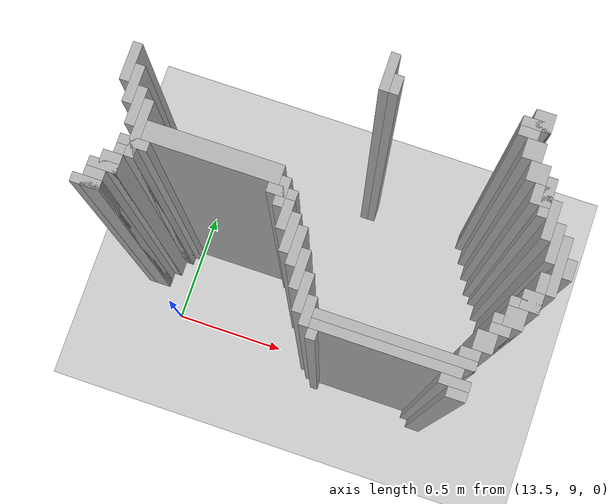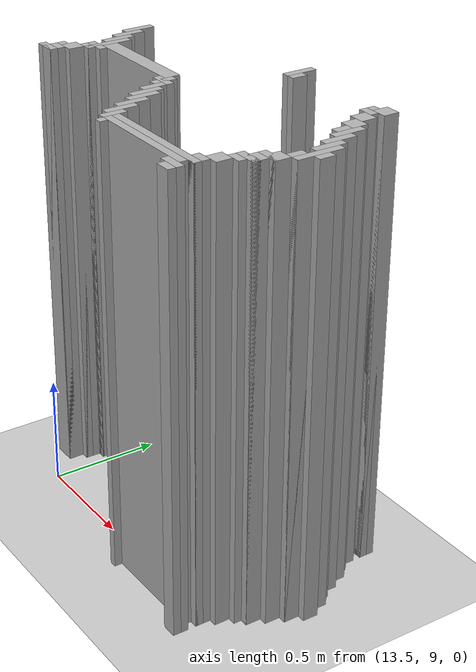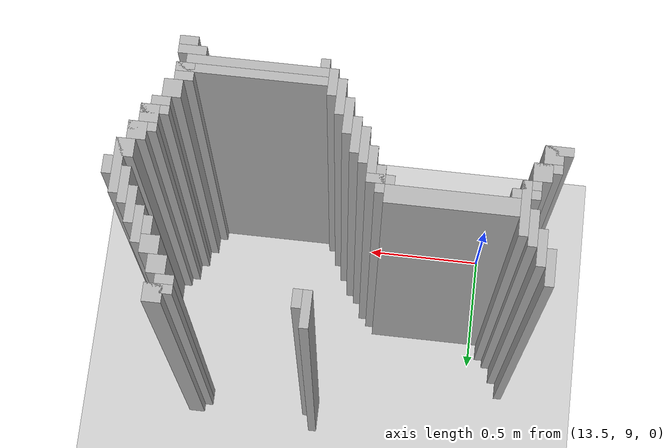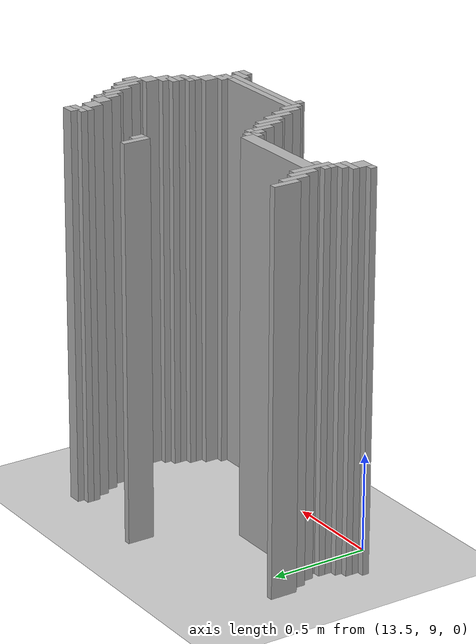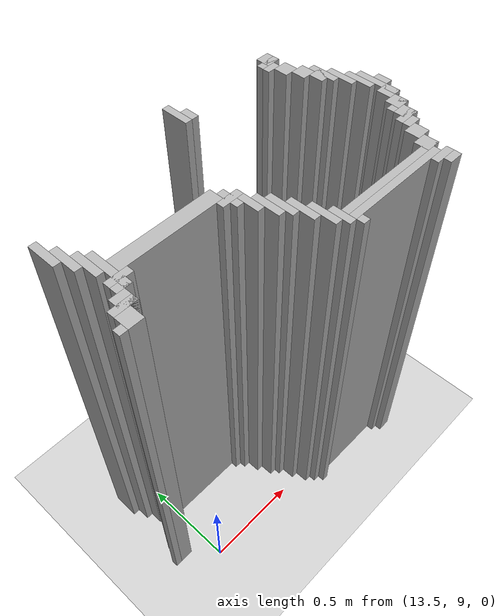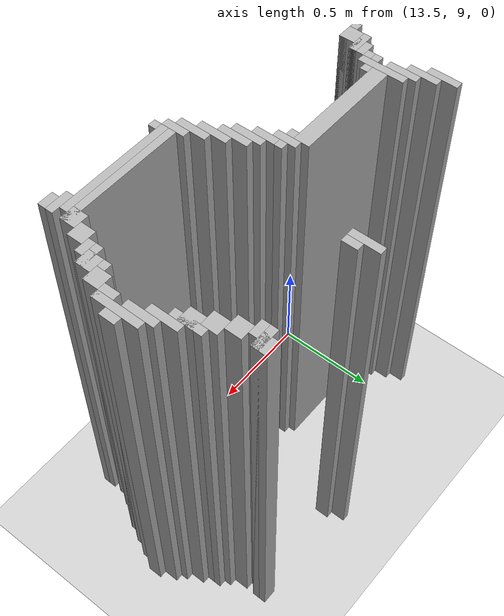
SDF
<sdf version="1.6">
 <world name="slam_world">
  <model name="ground_plane">
   <static>true</static>
   <link name="link">
    <collision name="collision">
     <geometry><plane><normal>0 0 1</normal><size>100 100</size></plane></geometry>
    </collision>
    <visual name="visual">
     <geometry><plane><normal>0 0 1</normal><size>100 100</size></plane></geometry>
     <material>
      <ambient>0.8 0.8 0.8 1</ambient>
      <diffuse>0.8 0.8 0.8 1</diffuse>
      <specular>0.8 0.8 0.8 1</specular>
     </material>
    </visual>
   </link>
  </model>
  <model name="wall_2509">
   <static>true</static>
   <pose>14.18213457076566 9.814385150812065 1.0 0 0 0</pose>
   <link name="link">
    <collision name="collision">
     <geometry><box><size>0.03480278422273782 0.13921113689095127 2.0</size></box></geometry>
    </collision>
    <visual name="visual">
     <geometry><box><size>0.03480278422273782 0.13921113689095127 2.0</size></box></geometry>
     <material><ambient>0.5 0.5 0.5 1</ambient><diffuse>0.7 0.7 0.7 1</diffuse></material>
    </visual>
   </link>
  </model>
  <model name="wall_2518">
   <static>true</static>
   <pose>14.721577726218097 9.814385150812065 1.0 0 0 0</pose>
   <link name="link">
    <collision name="collision">
     <geometry><box><size>0.06960556844547564 0.06960556844547564 2.0</size></box></geometry>
    </collision>
    <visual name="visual">
     <geometry><box><size>0.06960556844547564 0.06960556844547564 2.0</size></box></geometry>
     <material><ambient>0.5 0.5 0.5 1</ambient><diffuse>0.7 0.7 0.7 1</diffuse></material>
    </visual>
   </link>
  </model>
  <model name="wall_2531">
   <static>true</static>
   <pose>14.2169373549884 9.779582366589327 1.0 0 0 0</pose>
   <link name="link">
    <collision name="collision">
     <geometry><box><size>0.03480278422273782 0.06960556844547564 2.0</size></box></geometry>
    </collision>
    <visual name="visual">
     <geometry><box><size>0.03480278422273782 0.06960556844547564 2.0</size></box></geometry>
     <material><ambient>0.5 0.5 0.5 1</ambient><diffuse>0.7 0.7 0.7 1</diffuse></material>
    </visual>
   </link>
  </model>
  <model name="wall_2532">
   <static>true</static>
   <pose>14.704176334106728 9.796983758700696 1.0 0 0 0</pose>
   <link name="link">
    <collision name="collision">
     <geometry><box><size>0.10440835266821345 0.03480278422273782 2.0</size></box></geometry>
    </collision>
    <visual name="visual">
     <geometry><box><size>0.10440835266821345 0.03480278422273782 2.0</size></box></geometry>
     <material><ambient>0.5 0.5 0.5 1</ambient><diffuse>0.7 0.7 0.7 1</diffuse></material>
    </visual>
   </link>
  </model>
  <model name="wall_2540">
   <static>true</static>
   <pose>14.68677494199536 9.762180974477959 1.0 0 0 0</pose>
   <link name="link">
    <collision name="collision">
     <geometry><box><size>0.06960556844547564 0.03480278422273782 2.0</size></box></geometry>
    </collision>
    <visual name="visual">
     <geometry><box><size>0.06960556844547564 0.03480278422273782 2.0</size></box></geometry>
     <material><ambient>0.5 0.5 0.5 1</ambient><diffuse>0.7 0.7 0.7 1</diffuse></material>
    </visual>
   </link>
  </model>
  <model name="wall_2551">
   <static>true</static>
   <pose>14.721577726218097 9.70997679814385 1.0 0 0 0</pose>
   <link name="link">
    <collision name="collision">
     <geometry><box><size>0.06960556844547564 0.06960556844547564 2.0</size></box></geometry>
    </collision>
    <visual name="visual">
     <geometry><box><size>0.06960556844547564 0.06960556844547564 2.0</size></box></geometry>
     <material><ambient>0.5 0.5 0.5 1</ambient><diffuse>0.7 0.7 0.7 1</diffuse></material>
    </visual>
   </link>
  </model>
  <model name="wall_2568">
   <static>true</static>
   <pose>14.756380510440835 9.640371229698376 1.0 0 0 0</pose>
   <link name="link">
    <collision name="collision">
     <geometry><box><size>0.06960556844547564 0.06960556844547564 2.0</size></box></geometry>
    </collision>
    <visual name="visual">
     <geometry><box><size>0.06960556844547564 0.06960556844547564 2.0</size></box></geometry>
     <material><ambient>0.5 0.5 0.5 1</ambient><diffuse>0.7 0.7 0.7 1</diffuse></material>
    </visual>
   </link>
  </model>
  <model name="wall_2578">
   <static>true</static>
   <pose>13.346867749419953 9.5707656612529 1.0 0 0 0</pose>
   <link name="link">
    <collision name="collision">
     <geometry><box><size>0.03480278422273782 0.13921113689095127 2.0</size></box></geometry>
    </collision>
    <visual name="visual">
     <geometry><box><size>0.03480278422273782 0.13921113689095127 2.0</size></box></geometry>
     <material><ambient>0.5 0.5 0.5 1</ambient><diffuse>0.7 0.7 0.7 1</diffuse></material>
    </visual>
   </link>
  </model>
  <model name="wall_2579">
   <static>true</static>
   <pose>14.80858468677494 9.5707656612529 1.0 0 0 0</pose>
   <link name="link">
    <collision name="collision">
     <geometry><box><size>0.03480278422273782 0.13921113689095127 2.0</size></box></geometry>
    </collision>
    <visual name="visual">
     <geometry><box><size>0.03480278422273782 0.13921113689095127 2.0</size></box></geometry>
     <material><ambient>0.5 0.5 0.5 1</ambient><diffuse>0.7 0.7 0.7 1</diffuse></material>
    </visual>
   </link>
  </model>
  <model name="wall_2590">
   <static>true</static>
   <pose>14.791183294663572 9.5707656612529 1.0 0 0 0</pose>
   <link name="link">
    <collision name="collision">
     <geometry><box><size>0.06960556844547564 0.06960556844547564 2.0</size></box></geometry>
    </collision>
    <visual name="visual">
     <geometry><box><size>0.06960556844547564 0.06960556844547564 2.0</size></box></geometry>
     <material><ambient>0.5 0.5 0.5 1</ambient><diffuse>0.7 0.7 0.7 1</diffuse></material>
    </visual>
   </link>
  </model>
  <model name="wall_2600">
   <static>true</static>
   <pose>13.38167053364269 9.501160092807424 1.0 0 0 0</pose>
   <link name="link">
    <collision name="collision">
     <geometry><box><size>0.03480278422273782 0.13921113689095127 2.0</size></box></geometry>
    </collision>
    <visual name="visual">
     <geometry><box><size>0.03480278422273782 0.13921113689095127 2.0</size></box></geometry>
     <material><ambient>0.5 0.5 0.5 1</ambient><diffuse>0.7 0.7 0.7 1</diffuse></material>
    </visual>
   </link>
  </model>
  <model name="wall_2601">
   <static>true</static>
   <pose>14.84338747099768 9.501160092807424 1.0 0 0 0</pose>
   <link name="link">
    <collision name="collision">
     <geometry><box><size>0.03480278422273782 0.13921113689095127 2.0</size></box></geometry>
    </collision>
    <visual name="visual">
     <geometry><box><size>0.03480278422273782 0.13921113689095127 2.0</size></box></geometry>
     <material><ambient>0.5 0.5 0.5 1</ambient><diffuse>0.7 0.7 0.7 1</diffuse></material>
    </visual>
   </link>
  </model>
  <model name="wall_2615">
   <static>true</static>
   <pose>13.416473317865428 9.431554524361948 1.0 0 0 0</pose>
   <link name="link">
    <collision name="collision">
     <geometry><box><size>0.03480278422273782 0.13921113689095127 2.0</size></box></geometry>
    </collision>
    <visual name="visual">
     <geometry><box><size>0.03480278422273782 0.13921113689095127 2.0</size></box></geometry>
     <material><ambient>0.5 0.5 0.5 1</ambient><diffuse>0.7 0.7 0.7 1</diffuse></material>
    </visual>
   </link>
  </model>
  <model name="wall_2616">
   <static>true</static>
   <pose>14.878190255220417 9.431554524361948 1.0 0 0 0</pose>
   <link name="link">
    <collision name="collision">
     <geometry><box><size>0.03480278422273782 0.13921113689095127 2.0</size></box></geometry>
    </collision>
    <visual name="visual">
     <geometry><box><size>0.03480278422273782 0.13921113689095127 2.0</size></box></geometry>
     <material><ambient>0.5 0.5 0.5 1</ambient><diffuse>0.7 0.7 0.7 1</diffuse></material>
    </visual>
   </link>
  </model>
  <model name="wall_2626">
   <static>true</static>
   <pose>13.451276102088167 9.361948955916473 1.0 0 0 0</pose>
   <link name="link">
    <collision name="collision">
     <geometry><box><size>0.03480278422273782 0.2088167053364269 2.0</size></box></geometry>
    </collision>
    <visual name="visual">
     <geometry><box><size>0.03480278422273782 0.2088167053364269 2.0</size></box></geometry>
     <material><ambient>0.5 0.5 0.5 1</ambient><diffuse>0.7 0.7 0.7 1</diffuse></material>
    </visual>
   </link>
  </model>
  <model name="wall_2627">
   <static>true</static>
   <pose>14.912993039443155 9.361948955916473 1.0 0 0 0</pose>
   <link name="link">
    <collision name="collision">
     <geometry><box><size>0.03480278422273782 0.2088167053364269 2.0</size></box></geometry>
    </collision>
    <visual name="visual">
     <geometry><box><size>0.03480278422273782 0.2088167053364269 2.0</size></box></geometry>
     <material><ambient>0.5 0.5 0.5 1</ambient><diffuse>0.7 0.7 0.7 1</diffuse></material>
    </visual>
   </link>
  </model>
  <model name="wall_2641">
   <static>true</static>
   <pose>13.7122969837587 9.361948955916473 1.0 0 0 0</pose>
   <link name="link">
    <collision name="collision">
     <geometry><box><size>0.4872389791183295 0.06960556844547564 2.0</size></box></geometry>
    </collision>
    <visual name="visual">
     <geometry><box><size>0.4872389791183295 0.06960556844547564 2.0</size></box></geometry>
     <material><ambient>0.5 0.5 0.5 1</ambient><diffuse>0.7 0.7 0.7 1</diffuse></material>
    </visual>
   </link>
  </model>
  <model name="wall_2642">
   <static>true</static>
   <pose>14.947795823665892 9.361948955916473 1.0 0 0 0</pose>
   <link name="link">
    <collision name="collision">
     <geometry><box><size>0.03480278422273782 0.06960556844547564 2.0</size></box></geometry>
    </collision>
    <visual name="visual">
     <geometry><box><size>0.03480278422273782 0.06960556844547564 2.0</size></box></geometry>
     <material><ambient>0.5 0.5 0.5 1</ambient><diffuse>0.7 0.7 0.7 1</diffuse></material>
    </visual>
   </link>
  </model>
  <model name="wall_2652">
   <static>true</static>
   <pose>13.973317865429234 9.309744779582367 1.0 0 0 0</pose>
   <link name="link">
    <collision name="collision">
     <geometry><box><size>0.03480278422273782 0.10440835266821345 2.0</size></box></geometry>
    </collision>
    <visual name="visual">
     <geometry><box><size>0.03480278422273782 0.10440835266821345 2.0</size></box></geometry>
     <material><ambient>0.5 0.5 0.5 1</ambient><diffuse>0.7 0.7 0.7 1</diffuse></material>
    </visual>
   </link>
  </model>
  <model name="wall_2669">
   <static>true</static>
   <pose>13.451276102088167 9.309744779582367 1.0 0 0 0</pose>
   <link name="link">
    <collision name="collision">
     <geometry><box><size>0.10440835266821345 0.03480278422273782 2.0</size></box></geometry>
    </collision>
    <visual name="visual">
     <geometry><box><size>0.10440835266821345 0.03480278422273782 2.0</size></box></geometry>
     <material><ambient>0.5 0.5 0.5 1</ambient><diffuse>0.7 0.7 0.7 1</diffuse></material>
    </visual>
   </link>
  </model>
  <model name="wall_2670">
   <static>true</static>
   <pose>13.973317865429234 9.309744779582367 1.0 0 0 0</pose>
   <link name="link">
    <collision name="collision">
     <geometry><box><size>0.10440835266821345 0.03480278422273782 2.0</size></box></geometry>
    </collision>
    <visual name="visual">
     <geometry><box><size>0.10440835266821345 0.03480278422273782 2.0</size></box></geometry>
     <material><ambient>0.5 0.5 0.5 1</ambient><diffuse>0.7 0.7 0.7 1</diffuse></material>
    </visual>
   </link>
  </model>
  <model name="wall_2671">
   <static>true</static>
   <pose>14.895591647331786 9.292343387470996 1.0 0 0 0</pose>
   <link name="link">
    <collision name="collision">
     <geometry><box><size>0.06960556844547564 0.06960556844547564 2.0</size></box></geometry>
    </collision>
    <visual name="visual">
     <geometry><box><size>0.06960556844547564 0.06960556844547564 2.0</size></box></geometry>
     <material><ambient>0.5 0.5 0.5 1</ambient><diffuse>0.7 0.7 0.7 1</diffuse></material>
    </visual>
   </link>
  </model>
  <model name="wall_2688">
   <static>true</static>
   <pose>13.433874709976797 9.274941995359628 1.0 0 0 0</pose>
   <link name="link">
    <collision name="collision">
     <geometry><box><size>0.06960556844547564 0.03480278422273782 2.0</size></box></geometry>
    </collision>
    <visual name="visual">
     <geometry><box><size>0.06960556844547564 0.03480278422273782 2.0</size></box></geometry>
     <material><ambient>0.5 0.5 0.5 1</ambient><diffuse>0.7 0.7 0.7 1</diffuse></material>
    </visual>
   </link>
  </model>
  <model name="wall_2689">
   <static>true</static>
   <pose>14.008120649651971 9.24013921113689 1.0 0 0 0</pose>
   <link name="link">
    <collision name="collision">
     <geometry><box><size>0.03480278422273782 0.10440835266821345 2.0</size></box></geometry>
    </collision>
    <visual name="visual">
     <geometry><box><size>0.03480278422273782 0.10440835266821345 2.0</size></box></geometry>
     <material><ambient>0.5 0.5 0.5 1</ambient><diffuse>0.7 0.7 0.7 1</diffuse></material>
    </visual>
   </link>
  </model>
  <model name="wall_2706">
   <static>true</static>
   <pose>13.39907192575406 9.222737819025522 1.0 0 0 0</pose>
   <link name="link">
    <collision name="collision">
     <geometry><box><size>0.06960556844547564 0.06960556844547564 2.0</size></box></geometry>
    </collision>
    <visual name="visual">
     <geometry><box><size>0.06960556844547564 0.06960556844547564 2.0</size></box></geometry>
     <material><ambient>0.5 0.5 0.5 1</ambient><diffuse>0.7 0.7 0.7 1</diffuse></material>
    </visual>
   </link>
  </model>
  <model name="wall_2707">
   <static>true</static>
   <pose>14.042923433874709 9.187935034802784 1.0 0 0 0</pose>
   <link name="link">
    <collision name="collision">
     <geometry><box><size>0.03480278422273782 0.13921113689095127 2.0</size></box></geometry>
    </collision>
    <visual name="visual">
     <geometry><box><size>0.03480278422273782 0.13921113689095127 2.0</size></box></geometry>
     <material><ambient>0.5 0.5 0.5 1</ambient><diffuse>0.7 0.7 0.7 1</diffuse></material>
    </visual>
   </link>
  </model>
  <model name="wall_2708">
   <static>true</static>
   <pose>14.860788863109049 9.222737819025522 1.0 0 0 0</pose>
   <link name="link">
    <collision name="collision">
     <geometry><box><size>0.06960556844547564 0.06960556844547564 2.0</size></box></geometry>
    </collision>
    <visual name="visual">
     <geometry><box><size>0.06960556844547564 0.06960556844547564 2.0</size></box></geometry>
     <material><ambient>0.5 0.5 0.5 1</ambient><diffuse>0.7 0.7 0.7 1</diffuse></material>
    </visual>
   </link>
  </model>
  <model name="wall_2725">
   <static>true</static>
   <pose>13.38167053364269 9.205336426914153 1.0 0 0 0</pose>
   <link name="link">
    <collision name="collision">
     <geometry><box><size>0.10440835266821345 0.03480278422273782 2.0</size></box></geometry>
    </collision>
    <visual name="visual">
     <geometry><box><size>0.10440835266821345 0.03480278422273782 2.0</size></box></geometry>
     <material><ambient>0.5 0.5 0.5 1</ambient><diffuse>0.7 0.7 0.7 1</diffuse></material>
    </visual>
   </link>
  </model>
  <model name="wall_2726">
   <static>true</static>
   <pose>14.077726218097448 9.153132250580047 1.0 0 0 0</pose>
   <link name="link">
    <collision name="collision">
     <geometry><box><size>0.03480278422273782 0.13921113689095127 2.0</size></box></geometry>
    </collision>
    <visual name="visual">
     <geometry><box><size>0.03480278422273782 0.13921113689095127 2.0</size></box></geometry>
     <material><ambient>0.5 0.5 0.5 1</ambient><diffuse>0.7 0.7 0.7 1</diffuse></material>
    </visual>
   </link>
  </model>
  <model name="wall_2727">
   <static>true</static>
   <pose>14.84338747099768 9.205336426914153 1.0 0 0 0</pose>
   <link name="link">
    <collision name="collision">
     <geometry><box><size>0.10440835266821345 0.03480278422273782 2.0</size></box></geometry>
    </collision>
    <visual name="visual">
     <geometry><box><size>0.10440835266821345 0.03480278422273782 2.0</size></box></geometry>
     <material><ambient>0.5 0.5 0.5 1</ambient><diffuse>0.7 0.7 0.7 1</diffuse></material>
    </visual>
   </link>
  </model>
  <model name="wall_2741">
   <static>true</static>
   <pose>13.364269141531322 9.153132250580047 1.0 0 0 0</pose>
   <link name="link">
    <collision name="collision">
     <geometry><box><size>0.06960556844547564 0.06960556844547564 2.0</size></box></geometry>
    </collision>
    <visual name="visual">
     <geometry><box><size>0.06960556844547564 0.06960556844547564 2.0</size></box></geometry>
     <material><ambient>0.5 0.5 0.5 1</ambient><diffuse>0.7 0.7 0.7 1</diffuse></material>
    </visual>
   </link>
  </model>
  <model name="wall_2742">
   <static>true</static>
   <pose>14.825986078886311 9.153132250580047 1.0 0 0 0</pose>
   <link name="link">
    <collision name="collision">
     <geometry><box><size>0.06960556844547564 0.06960556844547564 2.0</size></box></geometry>
    </collision>
    <visual name="visual">
     <geometry><box><size>0.06960556844547564 0.06960556844547564 2.0</size></box></geometry>
     <material><ambient>0.5 0.5 0.5 1</ambient><diffuse>0.7 0.7 0.7 1</diffuse></material>
    </visual>
   </link>
  </model>
  <model name="wall_2759">
   <static>true</static>
   <pose>13.346867749419953 9.135730858468676 1.0 0 0 0</pose>
   <link name="link">
    <collision name="collision">
     <geometry><box><size>0.10440835266821345 0.03480278422273782 2.0</size></box></geometry>
    </collision>
    <visual name="visual">
     <geometry><box><size>0.10440835266821345 0.03480278422273782 2.0</size></box></geometry>
     <material><ambient>0.5 0.5 0.5 1</ambient><diffuse>0.7 0.7 0.7 1</diffuse></material>
    </visual>
   </link>
  </model>
  <model name="wall_2760">
   <static>true</static>
   <pose>14.112529002320185 9.08352668213457 1.0 0 0 0</pose>
   <link name="link">
    <collision name="collision">
     <geometry><box><size>0.03480278422273782 0.13921113689095127 2.0</size></box></geometry>
    </collision>
    <visual name="visual">
     <geometry><box><size>0.03480278422273782 0.13921113689095127 2.0</size></box></geometry>
     <material><ambient>0.5 0.5 0.5 1</ambient><diffuse>0.7 0.7 0.7 1</diffuse></material>
    </visual>
   </link>
  </model>
  <model name="wall_2761">
   <static>true</static>
   <pose>14.80858468677494 9.135730858468676 1.0 0 0 0</pose>
   <link name="link">
    <collision name="collision">
     <geometry><box><size>0.10440835266821345 0.03480278422273782 2.0</size></box></geometry>
    </collision>
    <visual name="visual">
     <geometry><box><size>0.10440835266821345 0.03480278422273782 2.0</size></box></geometry>
     <material><ambient>0.5 0.5 0.5 1</ambient><diffuse>0.7 0.7 0.7 1</diffuse></material>
    </visual>
   </link>
  </model>
  <model name="wall_2771">
   <static>true</static>
   <pose>14.791183294663572 9.100928074245939 1.0 0 0 0</pose>
   <link name="link">
    <collision name="collision">
     <geometry><box><size>0.06960556844547564 0.03480278422273782 2.0</size></box></geometry>
    </collision>
    <visual name="visual">
     <geometry><box><size>0.06960556844547564 0.03480278422273782 2.0</size></box></geometry>
     <material><ambient>0.5 0.5 0.5 1</ambient><diffuse>0.7 0.7 0.7 1</diffuse></material>
    </visual>
   </link>
  </model>
  <model name="wall_2789">
   <static>true</static>
   <pose>14.147331786542923 9.013921113689095 1.0 0 0 0</pose>
   <link name="link">
    <collision name="collision">
     <geometry><box><size>0.03480278422273782 0.13921113689095127 2.0</size></box></geometry>
    </collision>
    <visual name="visual">
     <geometry><box><size>0.03480278422273782 0.13921113689095127 2.0</size></box></geometry>
     <material><ambient>0.5 0.5 0.5 1</ambient><diffuse>0.7 0.7 0.7 1</diffuse></material>
    </visual>
   </link>
  </model>
  <model name="wall_2790">
   <static>true</static>
   <pose>14.756380510440835 9.048723897911833 1.0 0 0 0</pose>
   <link name="link">
    <collision name="collision">
     <geometry><box><size>0.06960556844547564 0.06960556844547564 2.0</size></box></geometry>
    </collision>
    <visual name="visual">
     <geometry><box><size>0.06960556844547564 0.06960556844547564 2.0</size></box></geometry>
     <material><ambient>0.5 0.5 0.5 1</ambient><diffuse>0.7 0.7 0.7 1</diffuse></material>
    </visual>
   </link>
  </model>
  <model name="wall_2808">
   <static>true</static>
   <pose>14.18213457076566 8.961716937354987 1.0 0 0 0</pose>
   <link name="link">
    <collision name="collision">
     <geometry><box><size>0.03480278422273782 0.10440835266821345 2.0</size></box></geometry>
    </collision>
    <visual name="visual">
     <geometry><box><size>0.03480278422273782 0.10440835266821345 2.0</size></box></geometry>
     <material><ambient>0.5 0.5 0.5 1</ambient><diffuse>0.7 0.7 0.7 1</diffuse></material>
    </visual>
   </link>
  </model>
  <model name="wall_2809">
   <static>true</static>
   <pose>14.721577726218097 8.979118329466356 1.0 0 0 0</pose>
   <link name="link">
    <collision name="collision">
     <geometry><box><size>0.06960556844547564 0.06960556844547564 2.0</size></box></geometry>
    </collision>
    <visual name="visual">
     <geometry><box><size>0.06960556844547564 0.06960556844547564 2.0</size></box></geometry>
     <material><ambient>0.5 0.5 0.5 1</ambient><diffuse>0.7 0.7 0.7 1</diffuse></material>
    </visual>
   </link>
  </model>
  <model name="wall_2825">
   <static>true</static>
   <pose>14.477958236658932 8.961716937354987 1.0 0 0 0</pose>
   <link name="link">
    <collision name="collision">
     <geometry><box><size>0.5568445475638051 0.03480278422273782 2.0</size></box></geometry>
    </collision>
    <visual name="visual">
     <geometry><box><size>0.5568445475638051 0.03480278422273782 2.0</size></box></geometry>
     <material><ambient>0.5 0.5 0.5 1</ambient><diffuse>0.7 0.7 0.7 1</diffuse></material>
    </visual>
   </link>
  </model>
  <model name="wall_2836">
   <static>true</static>
   <pose>14.460556844547563 8.92691415313225 1.0 0 0 0</pose>
   <link name="link">
    <collision name="collision">
     <geometry><box><size>0.5220417633410672 0.03480278422273782 2.0</size></box></geometry>
    </collision>
    <visual name="visual">
     <geometry><box><size>0.5220417633410672 0.03480278422273782 2.0</size></box></geometry>
     <material><ambient>0.5 0.5 0.5 1</ambient><diffuse>0.7 0.7 0.7 1</diffuse></material>
    </visual>
   </link>
  </model>
  <model name="wall_2852">
   <static>true</static>
   <pose>14.2169373549884 8.892111368909513 1.0 0 0 0</pose>
   <link name="link">
    <collision name="collision">
     <geometry><box><size>0.03480278422273782 0.03480278422273782 2.0</size></box></geometry>
    </collision>
    <visual name="visual">
     <geometry><box><size>0.03480278422273782 0.03480278422273782 2.0</size></box></geometry>
     <material><ambient>0.5 0.5 0.5 1</ambient><diffuse>0.7 0.7 0.7 1</diffuse></material>
    </visual>
   </link>
  </model>
  <model name="wall_2853">
   <static>true</static>
   <pose>14.704176334106728 8.892111368909513 1.0 0 0 0</pose>
   <link name="link">
    <collision name="collision">
     <geometry><box><size>0.10440835266821345 0.03480278422273782 2.0</size></box></geometry>
    </collision>
    <visual name="visual">
     <geometry><box><size>0.10440835266821345 0.03480278422273782 2.0</size></box></geometry>
     <material><ambient>0.5 0.5 0.5 1</ambient><diffuse>0.7 0.7 0.7 1</diffuse></material>
    </visual>
   </link>
  </model>
  <model name="wall_2866">
   <static>true</static>
   <pose>14.721577726218097 8.857308584686775 1.0 0 0 0</pose>
   <link name="link">
    <collision name="collision">
     <geometry><box><size>0.06960556844547564 0.03480278422273782 2.0</size></box></geometry>
    </collision>
    <visual name="visual">
     <geometry><box><size>0.06960556844547564 0.03480278422273782 2.0</size></box></geometry>
     <material><ambient>0.5 0.5 0.5 1</ambient><diffuse>0.7 0.7 0.7 1</diffuse></material>
    </visual>
   </link>
  </model>
 </world>
</sdf>
